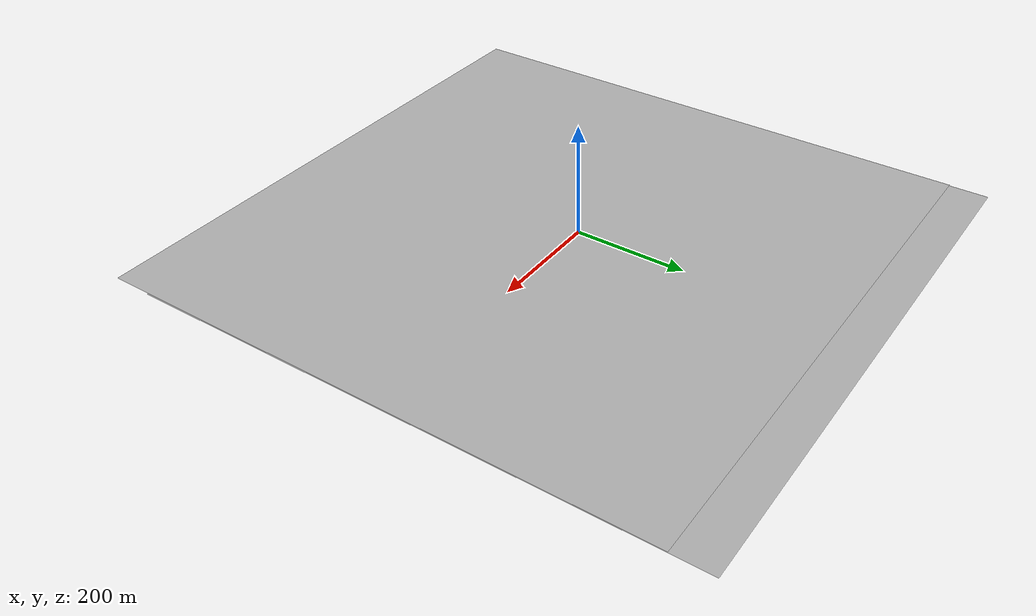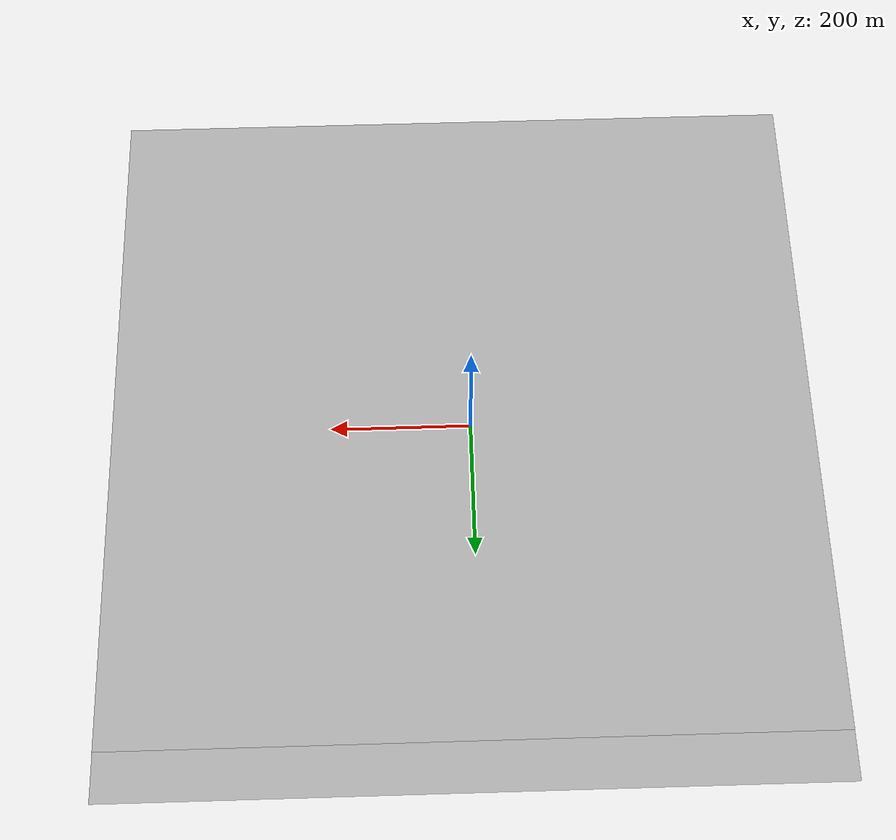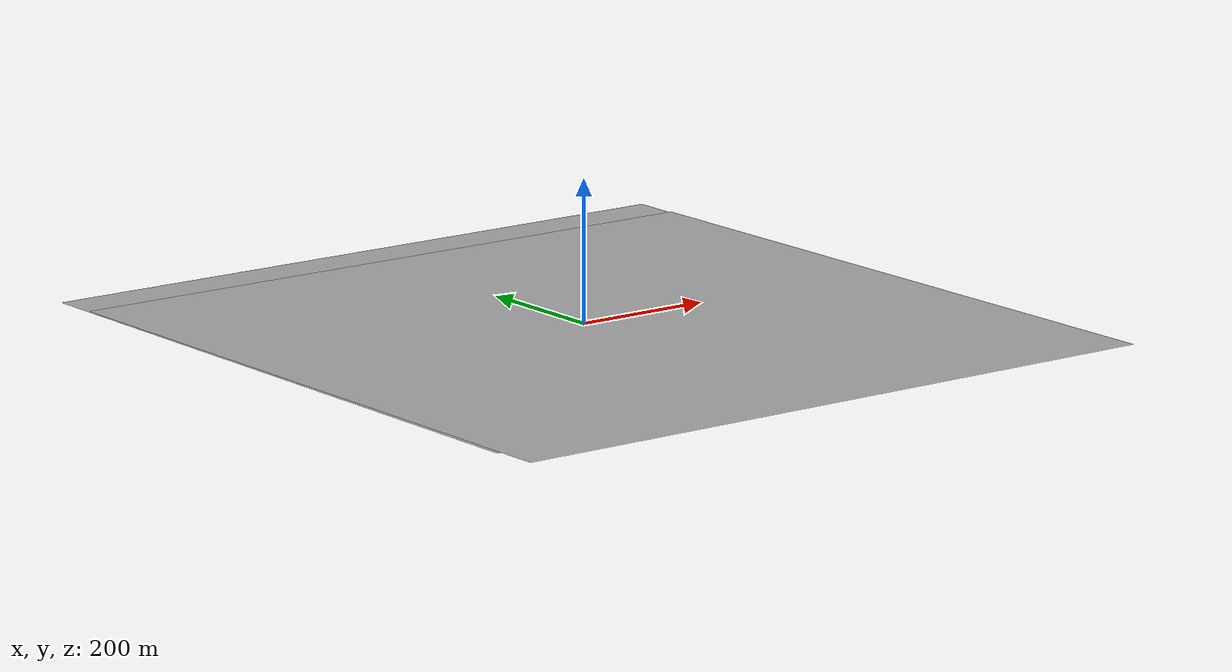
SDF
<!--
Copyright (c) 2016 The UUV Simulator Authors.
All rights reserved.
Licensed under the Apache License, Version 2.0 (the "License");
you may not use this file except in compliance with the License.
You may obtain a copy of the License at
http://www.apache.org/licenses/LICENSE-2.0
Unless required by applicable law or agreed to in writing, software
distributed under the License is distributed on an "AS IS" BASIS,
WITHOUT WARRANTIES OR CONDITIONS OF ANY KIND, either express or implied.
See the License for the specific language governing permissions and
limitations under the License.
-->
<?xml version="1.0" ?>
<sdf version="1.5">
  <model name="Grama">
    <static>true</static>
    <link name="link">
      <collision name="superficie_flutua">
	<cast_shadows>true</cast_shadows>
        <pose>0 0 0 3.14 0 0</pose>
	<scale>0.001 0.001 1</scale>
        <geometry>
          <mesh><uri>model://superficie_grama/meshes/superficie_grama.dae</uri></mesh>
        </geometry>
      </collision>

      <visual name="superficie_flutua">
        <cast_shadows>true</cast_shadows>
        <pose>0 0 0 3.14 0 0</pose>
	<scale>0.001 0.001 1</scale>
        <geometry>
          <mesh><uri>model://superficie_grama/meshes/superficie_grama.dae</uri></mesh>
        </geometry>
      </visual>

      <visual name="superficie_flutua2">
        <cast_shadows>true</cast_shadows>
        <pose>0 0 -2 0 0 0</pose>
	<scale>0.001 0.001 1</scale>
        <geometry>
          <mesh><uri>model://superficie_grama/meshes/superficie_grama.dae</uri></mesh>
        </geometry>
      </visual>

    </link>
  </model>
</sdf>
